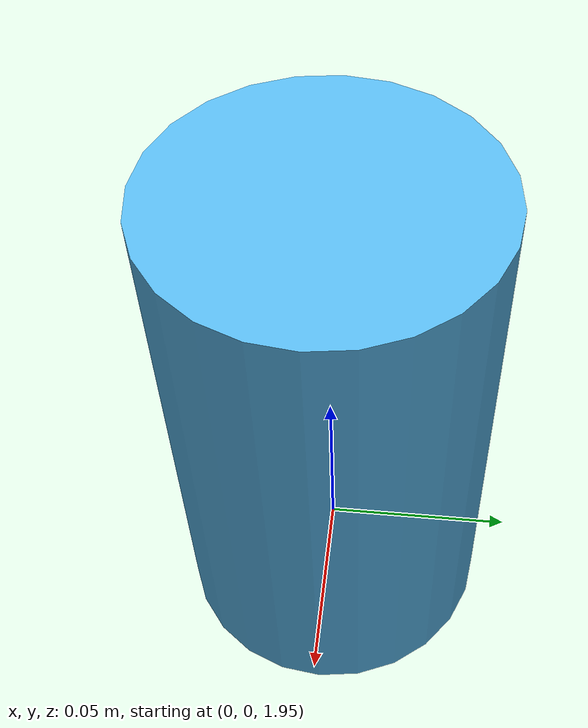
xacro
<?xml version="1.0" ?>
<!-- |    This document was autogenerated by xacro from HDL-32E.urdf                   | -->
<!-- |    EDITING THIS FILE BY HAND IS NOT RECOMMENDED                                 | -->
<!-- |    This document was autogenerated by xacro from HDL-32E.xacro                  | -->
<!-- |    EDITING THIS FILE BY HAND IS NOT RECOMMENDED                                 | -->
<robot name="HDL-32E">
  <link name="base_link"/>
  <joint name="velodyne2_base_mount_joint" type="fixed">
    <origin rpy="0 0 0" xyz="0 0 2"/>
    <parent link="base_link"/>
    <child link="velodyne2_base_link"/>
  </joint>
  <link name="velodyne2_base_link">
    <inertial>
      <mass value="1.0"/>
      <origin xyz="0 0 0.07212"/>
      <inertia ixx="0.002188947025" ixy="0" ixz="0" iyy="0.002188947025" iyz="0" izz="0.00091036445"/>
    </inertial>
    <visual>
      <geometry>
        <cylinder length="0.14424" radius="0.04267"/>
      </geometry>
    </visual>
    <collision>
      <origin rpy="0 0 0" xyz="0 0 0.07212"/>
      <geometry>
        <cylinder length="0.14424" radius="0.04267"/>
      </geometry>
    </collision>
  </link>
  <joint name="velodyne2_base_scan_joint" type="fixed">
    <origin rpy="0 0 0" xyz="0 0 0.09081"/>
    <parent link="velodyne2_base_link"/>
    <child link="velodyne2"/>
  </joint>
  <link name="velodyne2">
    <inertial>
      <mass value="0.01"/>
      <origin xyz="0 0 0"/>
      <inertia ixx="1e-7" ixy="0" ixz="0" iyy="1e-7" iyz="0" izz="1e-7"/>
    </inertial>
    <visual>
      <origin rpy="0 0 0" xyz="0 0 -0.09081"/>
      <geometry>
        <cylinder length="0.14424" radius="0.04267"/>
      </geometry>
    </visual>
    <collision>
      <geometry>
        <sphere radius="0"/>
      </geometry>
    </collision>
  </link>
  <!-- Gazebo requires the velodyne_gazebo_plugins package -->
  <gazebo reference="velodyne2">
    <sensor name="velodyne2-HDL32E" type="ray">
      <pose>0 0 0 0 0 0</pose>
      <visualize>false</visualize>
      <update_rate>10</update_rate>
      <ray>
        <scan>
          <horizontal>
            <samples>220</samples>
            <resolution>1</resolution>
            <min_angle>-3.141592653589793</min_angle>
            <max_angle>3.141592653589793</max_angle>
          </horizontal>
          <vertical>
            <samples>32</samples>
            <resolution>1</resolution>
            <min_angle>-0.5352924815866609</min_angle>
            <max_angle> 0.18622663118779495</max_angle>
          </vertical>
        </scan>
        <range>
          <min>0.3</min>
          <max>131.0</max>
          <resolution>0.001</resolution>
        </range>
        <noise>
          <type>gaussian</type>
          <mean>0.0</mean>
          <stddev>0.0</stddev>
        </noise>
      </ray>
      <plugin filename="libgazebo_ros_velodyne_laser.so" name="gazebo_ros_laser_controller">
        <ros>
          <namespace>/velodyne2</namespace>
          <remapping>~/out:=/velodyne_points2</remapping>
        </ros>
        <tf_prefix/>
        <frame_name>velodyne2</frame_name>
        <organize_cloud>False</organize_cloud>
        <min_range>0.9</min_range>
        <max_range>130.0</max_range>
        <gaussian_noise>0.008</gaussian_noise>
      </plugin>
    </sensor>
  </gazebo>
</robot>
